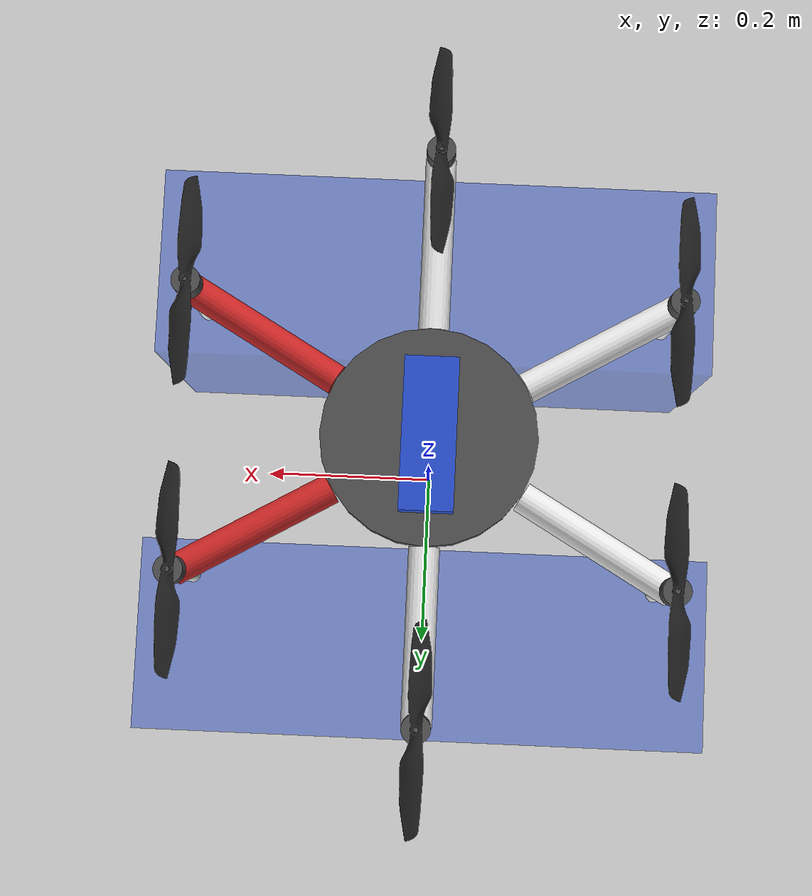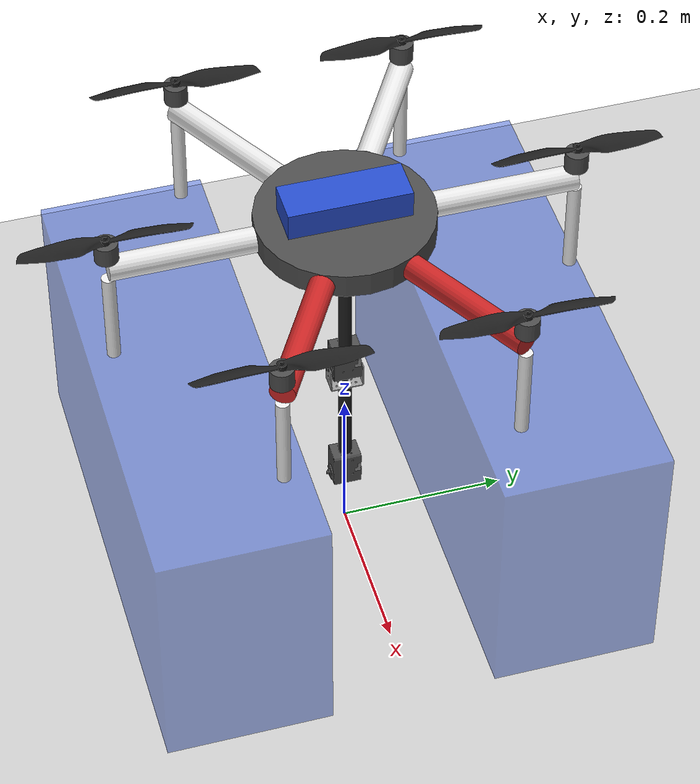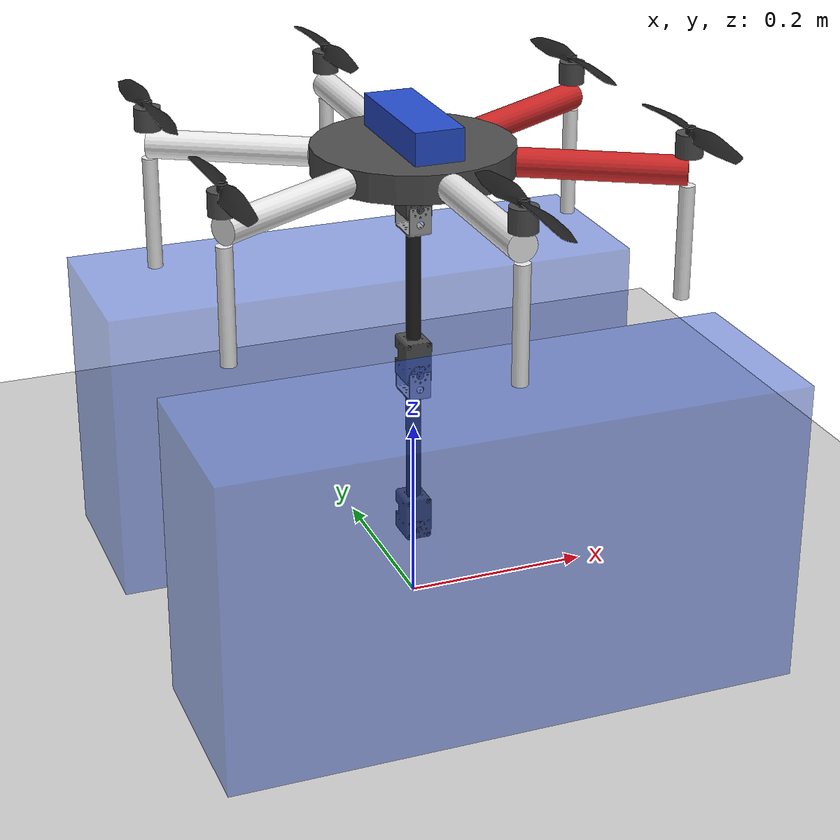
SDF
<?xml version="1.0" ?>
<sdf version="1.5">
  <world name="default">
    <!-- A global light source -->
    <include>
      <uri>model://sun</uri>
    </include>
    <!-- A ground plane -->
    <include>
      <uri>model://ground_plane</uri>
    </include>
    <include>
      <uri>model://mantis_uav</uri>
    </include>
    <include>
      <uri>model://uav_stand</uri>
    </include>
    <physics name='default_physics' default='0' type='ode'>
      <gravity>0 0 -9.80665</gravity>
      <ode>
        <solver>
          <type>quick</type>
          <iters>10</iters>
          <sor>1.3</sor>
          <use_dynamic_moi_rescaling>0</use_dynamic_moi_rescaling>
        </solver>
        <constraints>
          <cfm>0</cfm>
          <erp>0.2</erp>
          <contact_max_correcting_vel>100</contact_max_correcting_vel>
          <contact_surface_layer>0.001</contact_surface_layer>
        </constraints>
      </ode>
      <max_step_size>0.002</max_step_size>
      <real_time_factor>1</real_time_factor>
      <real_time_update_rate>500</real_time_update_rate>
      <magnetic_field>6e-06 2.3e-05 -4.2e-05</magnetic_field>
    </physics>
  </world>
</sdf>

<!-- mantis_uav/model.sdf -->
<sdf version='1.6'>
  <model name='mantis_uav'>
    <link name='base_link'>
      <pose>0 0 0.5 0 0 0</pose>
      <gravity>1</gravity>
      <self_collide>0</self_collide>
      <kinematic>0</kinematic>

	  <inertial>
        <mass>1.5480</mass>
        <inertia>
          <ixx>0.015198135489664</ixx>
          <ixy>0</ixy>
          <ixz>-1.192366728849071e-19</ixz>
          <iyy>0.014353211169664</iyy>
          <iyz>9.175993298526920e-20</iyz>
          <izz>0.027767959346667</izz>
        </inertia>
      </inertial>

      <collision name='collision_base_link'>
        <geometry>
          <cylinder>
            <radius>0.275</radius>
            <length>0.03</length>
          </cylinder>
        </geometry>
      </collision>

	  <visual name='visual_base_link'>
        <geometry>
          <cylinder>
            <radius>0.105</radius>
            <length>0.03</length>
          </cylinder>
        </geometry>
        <material>
          <lighting>1</lighting>
          <script>
            <uri>file://media/materials/scripts/gazebo.material</uri>
            <name>Gazebo/DarkGrey</name>
          </script>
        </material>
      </visual>

      <visual name="visual_motor_arm_1">
        <pose>0 -0.19 0 1.5708 0 3.1416</pose>
        <geometry>
          <cylinder>
            <radius>0.015</radius>
            <length>0.17</length>
          </cylinder>
        </geometry>
        <material>
          <lighting>1</lighting>
          <script>
            <uri>file://media/materials/scripts/gazebo.material</uri>
            <name>Gazebo/White</name>
          </script>
        </material>
      </visual>

      <visual name="visual_motor_arm_2">
        <pose>0 0.19 0 1.5708 0 0</pose>
        <geometry>
          <cylinder>
            <radius>0.015</radius>
            <length>0.17</length>
          </cylinder>
        </geometry>
        <material>
          <lighting>1</lighting>
          <script>
            <uri>file://media/materials/scripts/gazebo.material</uri>
            <name>Gazebo/White</name>
          </script>
        </material>
      </visual>

      <visual name="visual_motor_arm_3">
        <pose>0.165 0.095 0 1.5708 0 2.0944</pose>
        <geometry>
          <cylinder>
            <radius>0.015</radius>
            <length>0.17</length>
          </cylinder>
        </geometry>
        <material>
          <lighting>1</lighting>
          <script>
            <uri>file://media/materials/scripts/gazebo.material</uri>
            <name>Gazebo/Red</name>
          </script>
        </material>
      </visual>

      <visual name="visual_motor_arm_4">
        <pose>-0.165 -0.095 0 1.5708 0 2.0944</pose>
        <geometry>
          <cylinder>
            <radius>0.015</radius>
            <length>0.17</length>
          </cylinder>
        </geometry>
        <material>
          <lighting>1</lighting>
          <script>
            <uri>file://media/materials/scripts/gazebo.material</uri>
            <name>Gazebo/White</name>
          </script>
        </material>
      </visual>

      <visual name="visual_motor_arm_5">
        <pose>0.165 -0.095 0 1.5708 0 1.0472</pose>
        <geometry>
          <cylinder>
            <radius>0.015</radius>
            <length>0.17</length>
          </cylinder>
        </geometry>
        <material>
          <lighting>1</lighting>
          <script>
            <uri>file://media/materials/scripts/gazebo.material</uri>
            <name>Gazebo/Red</name>
          </script>
        </material>
      </visual>

      <visual name="visual_motor_arm_6">
        <pose>-0.165 0.095 0 1.5708 0 1.0472</pose>
        <geometry>
          <cylinder>
            <radius>0.015</radius>
            <length>0.17</length>
          </cylinder>
        </geometry>
        <material>
          <lighting>1</lighting>
          <script>
            <uri>file://media/materials/scripts/gazebo.material</uri>
            <name>Gazebo/White</name>
          </script>
        </material>
      </visual>

      <visual name="visual_motor_1">
        <pose>0 -0.275 0.027 0 0 0</pose>
        <geometry>
          <cylinder>
            <radius>0.014</radius>
            <length>0.024</length>
          </cylinder>
        </geometry>
        <material>
          <lighting>1</lighting>
          <script>
            <uri>file://media/materials/scripts/gazebo.material</uri>
            <name>Gazebo/DarkGrey</name>
          </script>
        </material>
      </visual>

      <visual name="visual_motor_2">
        <pose>0 0.275 0.027 0 0 0</pose>
        <geometry>
          <cylinder>
            <radius>0.014</radius>
            <length>0.024</length>
          </cylinder>
        </geometry>
        <material>
          <lighting>1</lighting>
          <script>
            <uri>file://media/materials/scripts/gazebo.material</uri>
            <name>Gazebo/DarkGrey</name>
          </script>
        </material>
      </visual>

      <visual name="visual_motor_3">
        <pose>0.2382 0.1375 0.027 0 0 0</pose>
        <geometry>
          <cylinder>
            <radius>0.014</radius>
            <length>0.024</length>
          </cylinder>
        </geometry>
        <material>
          <lighting>1</lighting>
          <script>
            <uri>file://media/materials/scripts/gazebo.material</uri>
            <name>Gazebo/DarkGrey</name>
          </script>
        </material>
      </visual>

      <visual name="visual_motor_4">
        <pose>-0.2382 -0.1375 0.027 0 0 0</pose>
        <geometry>
          <cylinder>
            <radius>0.014</radius>
            <length>0.024</length>
          </cylinder>
        </geometry>
        <material>
          <lighting>1</lighting>
          <script>
            <uri>file://media/materials/scripts/gazebo.material</uri>
            <name>Gazebo/DarkGrey</name>
          </script>
        </material>
      </visual>

      <visual name="visual_motor_5">
        <pose>0.2382 -0.1375 0.027 0 0 0</pose>
        <geometry>
          <cylinder>
            <radius>0.014</radius>
            <length>0.024</length>
          </cylinder>
        </geometry>
        <material>
          <lighting>1</lighting>
          <script>
            <uri>file://media/materials/scripts/gazebo.material</uri>
            <name>Gazebo/DarkGrey</name>
          </script>
        </material>
      </visual>

      <visual name="visual_motor_6">
        <pose>-0.2382 0.1375 0.027 0 0 0</pose>
        <geometry>
          <cylinder>
            <radius>0.014</radius>
            <length>0.024</length>
          </cylinder>
        </geometry>
        <material>
          <lighting>1</lighting>
          <script>
            <uri>file://media/materials/scripts/gazebo.material</uri>
            <name>Gazebo/DarkGrey</name>
          </script>
        </material>
      </visual>

      <collision name="collision_skid_1">
        <pose>0 -0.275 -0.075 0 0 0</pose>
        <geometry>
          <cylinder>
            <radius>0.008</radius>
            <length>0.12</length>
          </cylinder>
        </geometry>
      </collision>

      <visual name="visual_skid_1">
        <pose>0 -0.275 -0.075 0 0 0</pose>
        <geometry>
          <cylinder>
            <radius>0.008</radius>
            <length>0.12</length>
          </cylinder>
        </geometry>
        <material>
          <lighting>1</lighting>
          <script>
            <uri>file://media/materials/scripts/gazebo.material</uri>
            <name>Gazebo/White</name>
          </script>
        </material>
      </visual>

      <collision name="collision_skid_2">
        <pose>0 0.275 -0.075 0 0 0</pose>
        <geometry>
          <cylinder>
            <radius>0.008</radius>
            <length>0.12</length>
          </cylinder>
        </geometry>
      </collision>

      <visual name="visual_skid_2">
        <pose>0 0.275 -0.075 0 0 0</pose>
        <geometry>
          <cylinder>
            <radius>0.008</radius>
            <length>0.12</length>
          </cylinder>
        </geometry>
        <material>
          <lighting>1</lighting>
          <script>
            <uri>file://media/materials/scripts/gazebo.material</uri>
            <name>Gazebo/White</name>
          </script>
        </material>
      </visual>

      <collision name="collision_skid_3">
        <pose>0.2382 0.1375 -0.075 0 0 0</pose>
        <geometry>
          <cylinder>
            <radius>0.008</radius>
            <length>0.12</length>
          </cylinder>
        </geometry>
      </collision>

      <visual name="visual_skid_3">
        <pose>0.2382 0.1375 -0.075 0 0 0</pose>
        <geometry>
          <cylinder>
            <radius>0.008</radius>
            <length>0.12</length>
          </cylinder>
        </geometry>
        <material>
          <lighting>1</lighting>
          <script>
            <uri>file://media/materials/scripts/gazebo.material</uri>
            <name>Gazebo/White</name>
          </script>
        </material>
      </visual>

      <collision name="collision_skid_4">
        <pose>-0.2382 -0.1375 -0.075 0 0 0</pose>
        <geometry>
          <cylinder>
            <radius>0.008</radius>
            <length>0.12</length>
          </cylinder>
        </geometry>
      </collision>

      <visual name="visual_skid_4">
        <pose>-0.2382 -0.1375 -0.075 0 0 0</pose>
        <geometry>
          <cylinder>
            <radius>0.008</radius>
            <length>0.12</length>
          </cylinder>
        </geometry>
        <material>
          <lighting>1</lighting>
          <script>
            <uri>file://media/materials/scripts/gazebo.material</uri>
            <name>Gazebo/White</name>
          </script>
        </material>
      </visual>

      <collision name="collision_skid_5">
        <pose>0.2382 -0.1375 -0.075 0 0 0</pose>
        <geometry>
          <cylinder>
            <radius>0.008</radius>
            <length>0.12</length>
          </cylinder>
        </geometry>
      </collision>

      <visual name="visual_skid_5">
        <pose>0.2382 -0.1375 -0.075 0 0 0</pose>
        <geometry>
          <cylinder>
            <radius>0.008</radius>
            <length>0.12</length>
          </cylinder>
        </geometry>
        <material>
          <lighting>1</lighting>
          <script>
            <uri>file://media/materials/scripts/gazebo.material</uri>
            <name>Gazebo/White</name>
          </script>
        </material>
      </visual>

      <collision name="collision_skid_6">
        <pose>-0.2382 0.1375 -0.075 0 0 0</pose>
        <geometry>
          <cylinder>
            <radius>0.008</radius>
            <length>0.12</length>
          </cylinder>
        </geometry>
      </collision>

      <visual name="visual_skid_6">
        <pose>-0.2382 0.1375 -0.075 0 0 0</pose>
        <geometry>
          <cylinder>
            <radius>0.008</radius>
            <length>0.12</length>
          </cylinder>
        </geometry>
        <material>
          <lighting>1</lighting>
          <script>
            <uri>file://media/materials/scripts/gazebo.material</uri>
            <name>Gazebo/White</name>
          </script>
        </material>
      </visual>

      <collision name="collision_battery">
        <pose>0 0 0.032 0 0 0</pose>
        <geometry>
          <box>
            <size>0.052 0.146 0.034</size>
          </box>
        </geometry>
      </collision>

      <visual name="visual_battery">
        <pose>0 0 0.032 0 0 0</pose>
        <geometry>
          <box>
            <size>0.052 0.146 0.034</size>
          </box>
        </geometry>
        <material>
          <lighting>1</lighting>
          <script>
            <uri>file://media/materials/scripts/gazebo.material</uri>
            <name>Gazebo/Blue</name>
          </script>
        </material>
      </visual>

	  <collision name="collision_shoulder_servo">
        <pose>0 0 -0.03825 0 0 0</pose>
        <geometry>
          <box>
            <size>0.0285 0.034 0.0465</size>
          </box>
        </geometry>
      </collision>

      <visual name="visual_shoulder_servo">
        <pose>0.01425 0.019 -0.015 -1.570796327 0 3.141592654</pose>
        <geometry>
		  <mesh>
			<uri>model://mantis_uav/meshes/X-430_IDLE.stl</uri>
			<scale>0.001 0.001 0.001</scale>
		  </mesh>
        </geometry>
        <material>
          <lighting>1</lighting>
          <script>
            <uri>file://media/materials/scripts/gazebo.material</uri>
            <name>Gazebo/DarkGrey</name>
          </script>
        </material>
      </visual>
	</link>

	<joint type="revolute" name="joint_shoulder">
      <pose>-0.15047991 0 0 0 0 0</pose>
      <parent>base_link</parent>
      <child>arm_link_upperarm</child>
      <axis>
        <xyz>0 0 1</xyz>
        <dynamics>
          <damping>0.01</damping>
          <spring_reference>0.0</spring_reference>
          <spring_stiffness>0.0</spring_stiffness>
        </dynamics>
        <limit>
          <lower>-1.57</lower>
          <upper>1.57</upper>
        </limit>
      </axis>
    </joint>

    <link name="arm_link_upperarm">
      <pose>0 0 0.29927009 1.570796327 1.570796327 0</pose>
      <gravity>1</gravity>
      <self_collide>0</self_collide>
      <kinematic>0</kinematic>

	  <inertial>
        <mass>0.10022841</mass>
        <inertia>
          <ixx>1.678e-05</ixx>
          <ixy>0</ixy>
          <ixz>0</ixz>
          <iyy>2.5428e-04</iyy>
          <iyz>0</iyz>
          <izz>2.4944e-04</izz>
        </inertia>
      </inertial>

      <collision name="collision_upperarm">
        <pose>-0.05197991 0 0 0 0 0</pose>
        <geometry>
          <box>
            <size>0.197 0.0285 0.041</size>
          </box>
        </geometry>
      </collision>

      <visual name="visual_upperarm_bracket">
        <pose>-0.15297991 0.012 0.0205 1.570796327 1.570796327 0</pose>
        <geometry>
		  <mesh>
			<uri>model://mantis_uav/meshes/FR12-H101.stl</uri>
			<scale>0.001 0.001 0.001</scale>
		  </mesh>
        </geometry>
        <material>
          <lighting>1</lighting>
          <script>
            <uri>file://media/materials/scripts/gazebo.material</uri>
            <name>Gazebo/Grey</name>
          </script>
        </material>
      </visual>

      <visual name="visual_upperarm_rod">
        <pose>-0.12247991 -0.008 -0.008 0 0 0</pose>
        <geometry>
		  <mesh>
			<uri>model://mantis_uav/meshes/rod.stl</uri>
			<scale>0.001 0.001 0.001</scale>
		  </mesh>
        </geometry>
        <material>
          <lighting>1</lighting>
          <script>
            <uri>file://media/materials/scripts/gazebo.material</uri>
            <name>Gazebo/Black</name>
          </script>
        </material>
      </visual>

      <visual name="visual_upperarm_servo">
        <pose>-0.00247991 0.01425 -0.019 0 0 -1.570796327</pose>
        <geometry>
		  <mesh>
			<uri>model://mantis_uav/meshes/X-430_IDLE.stl</uri>
			<scale>0.001 0.001 0.001</scale>
		  </mesh>
        </geometry>
        <material>
          <lighting>1</lighting>
          <script>
            <uri>file://media/materials/scripts/gazebo.material</uri>
            <name>Gazebo/DarkGrey</name>
          </script>
        </material>
      </visual>
    </link>

	<joint type="revolute" name="joint_elbow">
      <pose>-0.15047991 0 0 0 0 0</pose>
      <parent>arm_link_upperarm</parent>
      <child>arm_link_forearm</child>
      <axis>
        <xyz>0 0 1</xyz>
        <dynamics>
          <damping>0.01</damping>
          <spring_reference>0.0</spring_reference>
          <spring_stiffness>0.0</spring_stiffness>
        </dynamics>
        <limit>
          <lower>-1.57</lower>
          <upper>1.57</upper>
        </limit>
      </axis>
    </joint>

    <link name="arm_link_forearm">
      <pose>0 0 0.11602009 1.570796327 1.570796327 0</pose>
      <gravity>1</gravity>
      <self_collide>0</self_collide>
      <kinematic>0</kinematic>

	  <inertial>
        <mass>0.10022841</mass>
        <inertia>
          <ixx>1.678e-05</ixx>
          <ixy>0</ixy>
          <ixz>0</ixz>
          <iyy>2.5428e-04</iyy>
          <iyz>0</iyz>
          <izz>2.4944e-04</izz>
        </inertia>
      </inertial>

      <collision name="collision_forearm">
        <pose>-0.05197991 0 0 0 0 0</pose>
        <geometry>
          <box>
            <size>0.197 0.0285 0.041</size>
          </box>
        </geometry>
      </collision>

      <visual name="visual_forearm_bracket">
        <pose>-0.15297991 0.012 0.0205 1.570796327 1.570796327 0</pose>
        <geometry>
		  <mesh>
			<uri>model://mantis_uav/meshes/FR12-H101.stl</uri>
			<scale>0.001 0.001 0.001</scale>
		  </mesh>
        </geometry>
        <material>
          <lighting>1</lighting>
          <script>
            <uri>file://media/materials/scripts/gazebo.material</uri>
            <name>Gazebo/Grey</name>
          </script>
        </material>
      </visual>

      <visual name="visual_forearm_rod">
        <pose>-0.12247991 -0.008 -0.008 0 0 0</pose>
        <geometry>
		  <mesh>
			<uri>model://mantis_uav/meshes/rod.stl</uri>
			<scale>0.001 0.001 0.001</scale>
		  </mesh>
        </geometry>
        <material>
          <lighting>1</lighting>
          <script>
            <uri>file://media/materials/scripts/gazebo.material</uri>
            <name>Gazebo/Black</name>
          </script>
        </material>
      </visual>

      <visual name="visual_forearm_servo">
        <pose>-0.00247991 0.01425 -0.019 0 0 -1.570796327</pose>
        <geometry>
		  <mesh>
			<uri>model://mantis_uav/meshes/X-430_IDLE.stl</uri>
			<scale>0.001 0.001 0.001</scale>
		  </mesh>
        </geometry>
        <material>
          <lighting>1</lighting>
          <script>
            <uri>file://media/materials/scripts/gazebo.material</uri>
            <name>Gazebo/DarkGrey</name>
          </script>
        </material>
      </visual>
    </link>

    <link name='rotor_1'>
      <pose>0 -0.275 0.5455 0 0 0</pose>
      <gravity>1</gravity>
      <velocity_decay/>
      <self_collide>0</self_collide>

      <inertial>
        <mass>0.005</mass>
        <inertia>
          <ixx>9.75e-07</ixx>
          <ixy>0</ixy>
          <ixz>0</ixz>
          <iyy>0.000273104</iyy>
          <iyz>0</iyz>
          <izz>0.000274004</izz>
        </inertia>
      </inertial>

      <collision name='collision_rotor_1'>
        <geometry>
          <cylinder>
            <length>0.005</length>
            <radius>0.128</radius>
          </cylinder>
        </geometry>
      </collision>

      <visual name='visual_rotor_1'>
        <pose>0 0 -0.0036 0 0 0</pose>
        <geometry>
		  <mesh>
			<uri>model://mantis_uav/meshes/prop_8045_CW.stl</uri>
			<scale>0.001 0.001 0.001</scale>
		  </mesh>
        </geometry>
        <material>
          <script>
            <name>Gazebo/Black</name>
            <uri>file://media/materials/scripts/gazebo.material</uri>
          </script>
        </material>
      </visual>
    </link>

    <joint type='revolute' name='joint_rotor_1'>
      <child>rotor_1</child>
      <parent>base_link</parent>
      <axis>
        <xyz>0 0 1</xyz>
        <limit>
          <lower>-1e+16</lower>
          <upper>1e+16</upper>
        </limit>
        <use_parent_model_frame>1</use_parent_model_frame>
      </axis>
    </joint>

    <link name='rotor_2'>
      <pose>0 0.275 0.5475 0 0 0</pose>
      <gravity>1</gravity>
      <velocity_decay/>
      <self_collide>0</self_collide>

      <inertial>
        <mass>0.005</mass>
        <inertia>
          <ixx>9.75e-07</ixx>
          <ixy>0</ixy>
          <ixz>0</ixz>
          <iyy>0.000273104</iyy>
          <iyz>0</iyz>
          <izz>0.000274004</izz>
        </inertia>
      </inertial>

      <collision name='collision_rotor_2'>
        <geometry>
          <cylinder>
            <length>0.005</length>
            <radius>0.128</radius>
          </cylinder>
        </geometry>
      </collision>

      <visual name='visual_rotor_2'>
        <pose>0 0 -0.0036 0 0 0</pose>
        <geometry>
		  <mesh>
			<uri>model://mantis_uav/meshes/prop_8045_CCW.stl</uri>
			<scale>0.001 0.001 0.001</scale>
		  </mesh>
        </geometry>
        <material>
          <script>
            <name>Gazebo/Black</name>
            <uri>file://media/materials/scripts/gazebo.material</uri>
          </script>
        </material>
      </visual>
    </link>

    <joint type='revolute' name='joint_rotor_2'>
      <child>rotor_2</child>
      <parent>base_link</parent>
      <axis>
        <xyz>0 0 1</xyz>
        <limit>
          <lower>-1e+16</lower>
          <upper>1e+16</upper>
        </limit>
        <use_parent_model_frame>1</use_parent_model_frame>
      </axis>
    </joint>

    <link name='rotor_3'>
      <pose>0.2382 0.1375 0.5455 0 0 0</pose>
      <gravity>1</gravity>
      <velocity_decay/>
      <self_collide>0</self_collide>

      <inertial>
        <mass>0.005</mass>
        <inertia>
          <ixx>9.75e-07</ixx>
          <ixy>0</ixy>
          <ixz>0</ixz>
          <iyy>0.000273104</iyy>
          <iyz>0</iyz>
          <izz>0.000274004</izz>
        </inertia>
      </inertial>

      <collision name='collision_rotor_3'>
        <geometry>
          <cylinder>
            <length>0.005</length>
            <radius>0.128</radius>
          </cylinder>
        </geometry>
      </collision>

      <visual name='visual_rotor_3'>
        <pose>0 0 -0.0036 0 0 0</pose>
        <geometry>
		  <mesh>
			<uri>model://mantis_uav/meshes/prop_8045_CW.stl</uri>
			<scale>0.001 0.001 0.001</scale>
		  </mesh>
        </geometry>
        <material>
          <script>
            <name>Gazebo/Black</name>
            <uri>file://media/materials/scripts/gazebo.material</uri>
          </script>
        </material>
      </visual>
    </link>

    <joint type='revolute' name='joint_rotor_3'>
      <child>rotor_3</child>
      <parent>base_link</parent>
      <axis>
        <xyz>0 0 1</xyz>
        <limit>
          <lower>-1e+16</lower>
          <upper>1e+16</upper>
        </limit>
        <use_parent_model_frame>1</use_parent_model_frame>
      </axis>
    </joint>

    <link name='rotor_4'>
      <pose>-0.2382 -0.1375 0.5455 0 0 0</pose>
      <gravity>1</gravity>
      <velocity_decay/>
      <self_collide>0</self_collide>

      <inertial>
        <mass>0.005</mass>
        <inertia>
          <ixx>9.75e-07</ixx>
          <ixy>0</ixy>
          <ixz>0</ixz>
          <iyy>0.000273104</iyy>
          <iyz>0</iyz>
          <izz>0.000274004</izz>
        </inertia>
      </inertial>

      <collision name='collision_rotor_4'>
        <geometry>
          <cylinder>
            <length>0.005</length>
            <radius>0.128</radius>
          </cylinder>
        </geometry>
      </collision>

      <visual name='visual_rotor_4'>
        <pose>0 0 -0.0036 0 0 0</pose>
        <geometry>
		  <mesh>
			<uri>model://mantis_uav/meshes/prop_8045_CCW.stl</uri>
			<scale>0.001 0.001 0.001</scale>
		  </mesh>
        </geometry>
        <material>
          <script>
            <name>Gazebo/Black</name>
            <uri>file://media/materials/scripts/gazebo.material</uri>
          </script>
        </material>
      </visual>
    </link>

    <joint type='revolute' name='joint_rotor_4'>
      <child>rotor_4</child>
      <parent>base_link</parent>
      <axis>
        <xyz>0 0 1</xyz>
        <limit>
          <lower>-1e+16</lower>
          <upper>1e+16</upper>
        </limit>
        <use_parent_model_frame>1</use_parent_model_frame>
      </axis>
    </joint>

    <link name='rotor_5'>
      <pose>0.2382 -0.1375 0.5455 0 0 0</pose>
      <gravity>1</gravity>
      <velocity_decay/>
      <self_collide>0</self_collide>

      <inertial>
        <mass>0.005</mass>
        <inertia>
          <ixx>9.75e-07</ixx>
          <ixy>0</ixy>
          <ixz>0</ixz>
          <iyy>0.000273104</iyy>
          <iyz>0</iyz>
          <izz>0.000274004</izz>
        </inertia>
      </inertial>

      <collision name='collision_rotor_5'>
        <geometry>
          <cylinder>
            <length>0.005</length>
            <radius>0.128</radius>
          </cylinder>
        </geometry>
      </collision>

      <visual name='visual_rotor_5'>
        <pose>0 0 -0.0036 0 0 0</pose>
        <geometry>
		  <mesh>
			<uri>model://mantis_uav/meshes/prop_8045_CCW.stl</uri>
			<scale>0.001 0.001 0.001</scale>
		  </mesh>
        </geometry>
        <material>
          <script>
            <name>Gazebo/Black</name>
            <uri>file://media/materials/scripts/gazebo.material</uri>
          </script>
        </material>
      </visual>
    </link>

    <joint type='revolute' name='joint_rotor_5'>
      <child>rotor_5</child>
      <parent>base_link</parent>
      <axis>
        <xyz>0 0 1</xyz>
        <limit>
          <lower>-1e+16</lower>
          <upper>1e+16</upper>
        </limit>
        <use_parent_model_frame>1</use_parent_model_frame>
      </axis>
    </joint>

    <link name='rotor_6'>
      <pose>-0.2382 0.1375 0.5455 0 0 0</pose>
      <gravity>1</gravity>
      <velocity_decay/>
      <self_collide>0</self_collide>

      <inertial>
        <mass>0.005</mass>
        <inertia>
          <ixx>9.75e-07</ixx>
          <ixy>0</ixy>
          <ixz>0</ixz>
          <iyy>0.000273104</iyy>
          <iyz>0</iyz>
          <izz>0.000274004</izz>
        </inertia>
      </inertial>

      <collision name='collision_rotor_6'>
        <geometry>
          <cylinder>
            <length>0.005</length>
            <radius>0.128</radius>
          </cylinder>
        </geometry>
      </collision>

      <visual name='visual_rotor_6'>
        <pose>0 0 -0.0036 0 0 0</pose>
        <geometry>
		  <mesh>
			<uri>model://mantis_uav/meshes/prop_8045_CW.stl</uri>
			<scale>0.001 0.001 0.001</scale>
		  </mesh>
        </geometry>
        <material>
          <script>
            <name>Gazebo/Black</name>
            <uri>file://media/materials/scripts/gazebo.material</uri>
          </script>
        </material>
      </visual>
    </link>

    <joint type='revolute' name='joint_rotor_6'>
      <child>rotor_6</child>
      <parent>base_link</parent>
      <axis>
        <xyz>0 0 1</xyz>
        <limit>
          <lower>-1e+16</lower>
          <upper>1e+16</upper>
        </limit>
        <use_parent_model_frame>1</use_parent_model_frame>
      </axis>
    </joint>

    <plugin name="mantis_gazebo_servo" filename="libmantis_gazebo_servo.so"/>

    <plugin name="mantis_gazebo_pwm" filename="libmantis_gazebo_pwm_motor.so"/>

    <plugin name="mantis_gazebo_safety" filename="libmantis_gazebo_safety.so"/>

    <plugin name="imu_plugin" filename="libhector_gazebo_ros_imu.so">
      <alwaysOn>true</alwaysOn>
      <frameName>world</frameName>
      <bodyName>base_link</bodyName>
      <topicName>mantis_uav/imu_data</topicName>
      <serviceName>mantis_uav/imu_service</serviceName>
      <gaussianNoise>0.0</gaussianNoise>
      <updateRate>500.0</updateRate>
    </plugin>

	<plugin name='mantis_gazebo_motor_model_1' filename='libmantis_gazebo_motor_model.so'>
      <robotNamespace></robotNamespace>
      <jointName>joint_rotor_1</jointName>
      <linkName>rotor_1</linkName>
      <turningDirection>cw</turningDirection>
      <timeConstantUp>0.0125</timeConstantUp>
      <timeConstantDown>0.025</timeConstantDown>
      <maxRotVelocity>1618</maxRotVelocity>
      <motorConstant>4.019e-06</motorConstant>
      <momentConstant>0.06</momentConstant>
      <commandSubTopic>/command/motor_velocity</commandSubTopic>
      <motorNumber>0</motorNumber>
      <rotorDragCoefficient>0.000806428</rotorDragCoefficient>
      <rollingMomentCoefficient>1e-06</rollingMomentCoefficient>
      <motorSpeedPubTopic>/state/motor_speed/1</motorSpeedPubTopic>
      <rotorVelocitySlowdownSim>10</rotorVelocitySlowdownSim>
    </plugin>

	<plugin name='mantis_gazebo_motor_model_2' filename='libmantis_gazebo_motor_model.so'>
      <robotNamespace></robotNamespace>
      <jointName>joint_rotor_2</jointName>
      <linkName>rotor_2</linkName>
      <turningDirection>ccw</turningDirection>
      <timeConstantUp>0.0125</timeConstantUp>
      <timeConstantDown>0.025</timeConstantDown>
      <maxRotVelocity>1618</maxRotVelocity>
      <motorConstant>4.019e-06</motorConstant>
      <momentConstant>0.06</momentConstant>
      <commandSubTopic>/command/motor_velocity</commandSubTopic>
      <motorNumber>1</motorNumber>
      <rotorDragCoefficient>0.000806428</rotorDragCoefficient>
      <rollingMomentCoefficient>1e-06</rollingMomentCoefficient>
      <motorSpeedPubTopic>/state/motor_speed/2</motorSpeedPubTopic>
      <rotorVelocitySlowdownSim>10</rotorVelocitySlowdownSim>
    </plugin>

	<plugin name='mantis_gazebo_motor_model_3' filename='libmantis_gazebo_motor_model.so'>
      <robotNamespace></robotNamespace>
      <jointName>joint_rotor_3</jointName>
      <linkName>rotor_3</linkName>
      <turningDirection>cw</turningDirection>
      <timeConstantUp>0.0125</timeConstantUp>
      <timeConstantDown>0.025</timeConstantDown>
      <maxRotVelocity>1618</maxRotVelocity>
      <motorConstant>4.019e-06</motorConstant>
      <momentConstant>0.06</momentConstant>
      <commandSubTopic>/command/motor_velocity</commandSubTopic>
      <motorNumber>2</motorNumber>
      <rotorDragCoefficient>0.000806428</rotorDragCoefficient>
      <rollingMomentCoefficient>1e-06</rollingMomentCoefficient>
      <motorSpeedPubTopic>/state/motor_speed/3</motorSpeedPubTopic>
      <rotorVelocitySlowdownSim>10</rotorVelocitySlowdownSim>
    </plugin>

	<plugin name='mantis_gazebo_motor_model_4' filename='libmantis_gazebo_motor_model.so'>
      <robotNamespace></robotNamespace>
      <jointName>joint_rotor_4</jointName>
      <linkName>rotor_4</linkName>
      <turningDirection>ccw</turningDirection>
      <timeConstantUp>0.0125</timeConstantUp>
      <timeConstantDown>0.025</timeConstantDown>
      <maxRotVelocity>1618</maxRotVelocity>
      <motorConstant>4.019e-06</motorConstant>
      <momentConstant>0.06</momentConstant>
      <commandSubTopic>/command/motor_velocity</commandSubTopic>
      <motorNumber>3</motorNumber>
      <rotorDragCoefficient>0.000806428</rotorDragCoefficient>
      <rollingMomentCoefficient>1e-06</rollingMomentCoefficient>
      <motorSpeedPubTopic>/state/motor_speed/4</motorSpeedPubTopic>
      <rotorVelocitySlowdownSim>10</rotorVelocitySlowdownSim>
    </plugin>

	<plugin name='mantis_gazebo_motor_model_5' filename='libmantis_gazebo_motor_model.so'>
      <robotNamespace></robotNamespace>
      <jointName>joint_rotor_5</jointName>
      <linkName>rotor_5</linkName>
      <turningDirection>ccw</turningDirection>
      <timeConstantUp>0.0125</timeConstantUp>
      <timeConstantDown>0.025</timeConstantDown>
      <maxRotVelocity>1618</maxRotVelocity>
      <motorConstant>4.019e-06</motorConstant>
      <momentConstant>0.06</momentConstant>
      <commandSubTopic>/command/motor_velocity</commandSubTopic>
      <motorNumber>4</motorNumber>
      <rotorDragCoefficient>0.000806428</rotorDragCoefficient>
      <rollingMomentCoefficient>1e-06</rollingMomentCoefficient>
      <motorSpeedPubTopic>/state/motor_speed/5</motorSpeedPubTopic>
      <rotorVelocitySlowdownSim>10</rotorVelocitySlowdownSim>
    </plugin>

	<plugin name='mantis_gazebo_motor_model_6' filename='libmantis_gazebo_motor_model.so'>
      <robotNamespace></robotNamespace>
      <jointName>joint_rotor_6</jointName>
      <linkName>rotor_6</linkName>
      <turningDirection>cw</turningDirection>
      <timeConstantUp>0.0125</timeConstantUp>
      <timeConstantDown>0.025</timeConstantDown>
      <maxRotVelocity>1618</maxRotVelocity>
      <motorConstant>4.019e-06</motorConstant>
      <momentConstant>0.06</momentConstant>
      <commandSubTopic>/command/motor_velocity</commandSubTopic>
      <motorNumber>5</motorNumber>
      <rotorDragCoefficient>0.000806428</rotorDragCoefficient>
      <rollingMomentCoefficient>1e-06</rollingMomentCoefficient>
      <motorSpeedPubTopic>/state/motor_speed/6</motorSpeedPubTopic>
      <rotorVelocitySlowdownSim>10</rotorVelocitySlowdownSim>
    </plugin>

    <static>false</static>
    <allow_auto_disable>1</allow_auto_disable>
  </model>
</sdf>

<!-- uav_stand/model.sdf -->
<sdf version='1.6'>
  <model name='uav_stand'>
  <static>true</static>

    <link name='base_link'>
      <pose>0 0 0.1625 0 0 0</pose>
      <collision name='collision_left'>
        <pose>0 0.2 0 0 0 0</pose>
        <geometry>
          <box>
            <size>0.6 0.2 0.325</size>
          </box>
        </geometry>
      </collision>

      <collision name='collision_base_right'>
        <pose>0 -0.2 0 0 0 0</pose>
        <geometry>
          <box>
            <size>0.6 0.2 0.325</size>
          </box>
        </geometry>
      </collision>

	  <visual name='visual_left'>
        <pose>0 0.2 0 0 0 0</pose>
        <geometry>
          <box>
            <size>0.6 0.2 0.325</size>
          </box>
        </geometry>
        <material>
          <lighting>1</lighting>
			  <script>
			    <name>Gazebo/BlueTransparent</name>
				<uri>file://media/materials/scripts/gazebo.material</uri>
			  </script>
        </material>
      </visual>

	  <visual name='visual_right'>
        <pose>0 -0.2 0 0 0 0</pose>
        <geometry>
          <box>
            <size>0.6 0.2 0.325</size>
          </box>
        </geometry>
        <material>
          <lighting>1</lighting>
			  <script>
			    <name>Gazebo/BlueTransparent</name>
				<uri>file://media/materials/scripts/gazebo.material</uri>
			  </script>
        </material>
      </visual>
	</link>
  </model>
</sdf>
